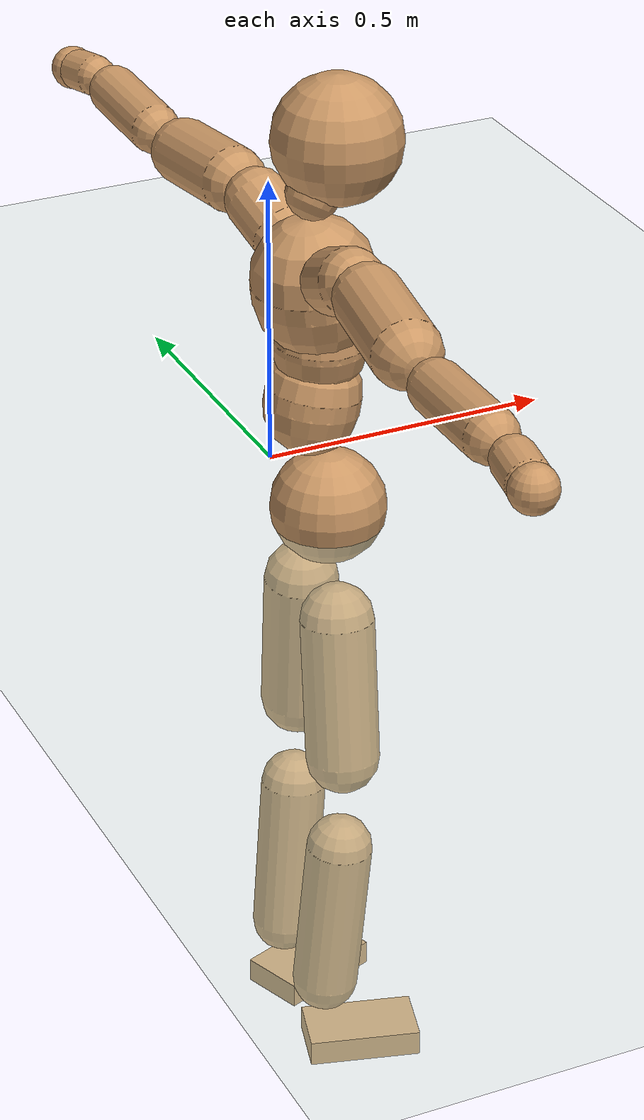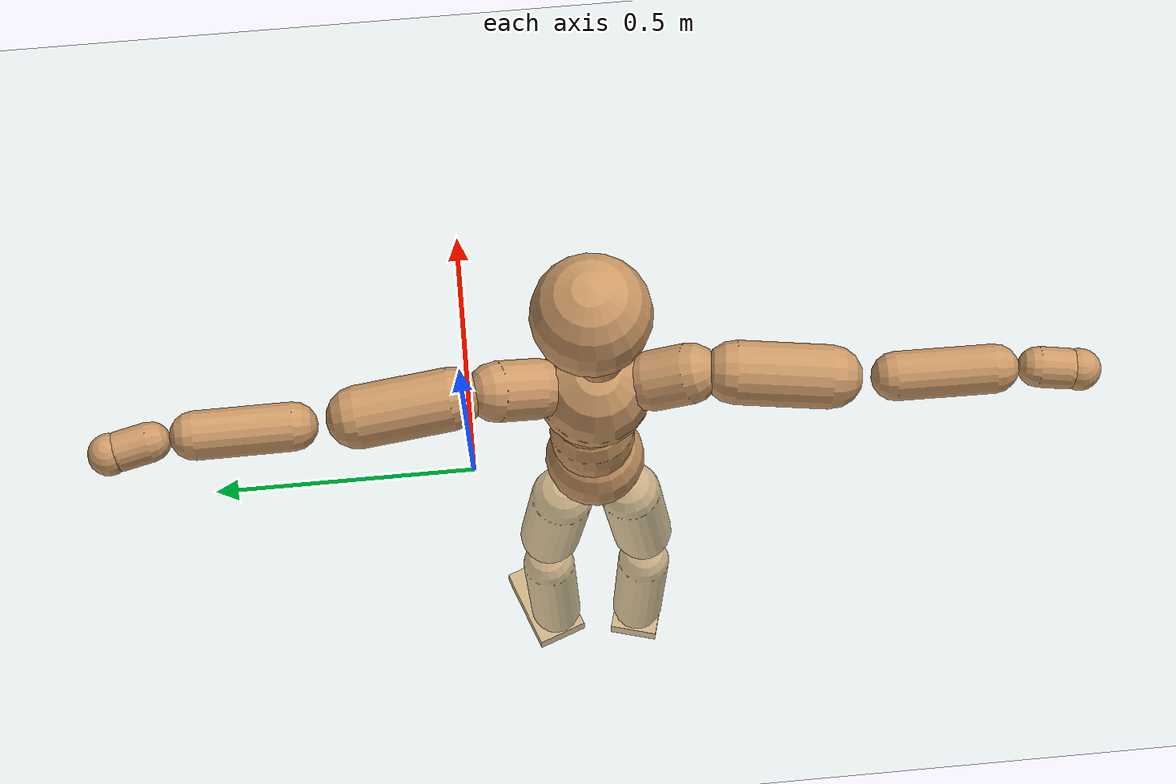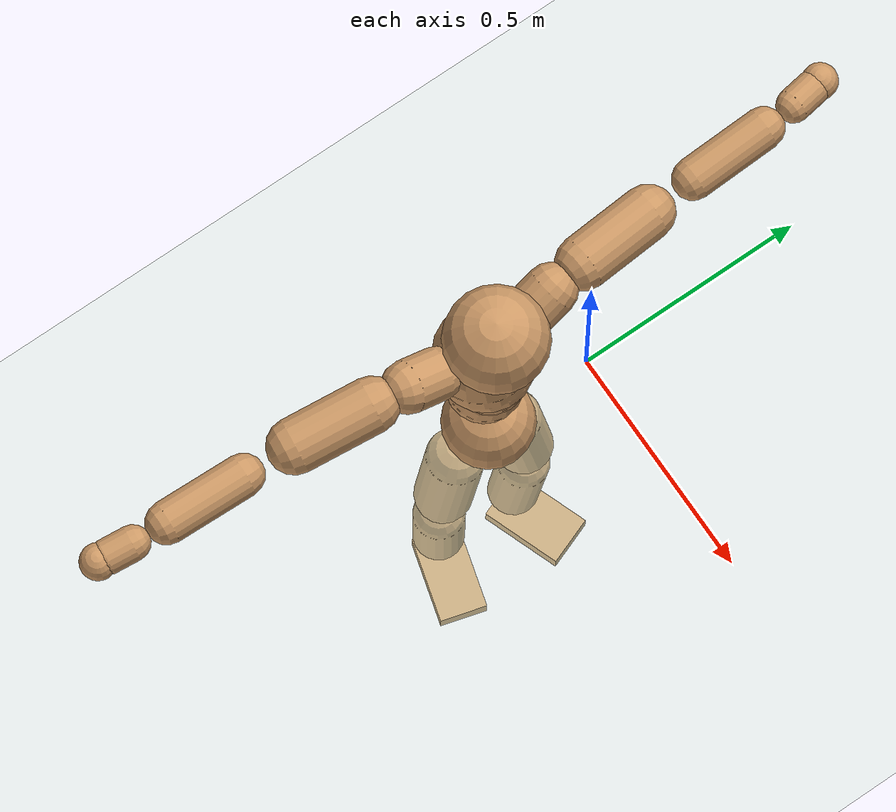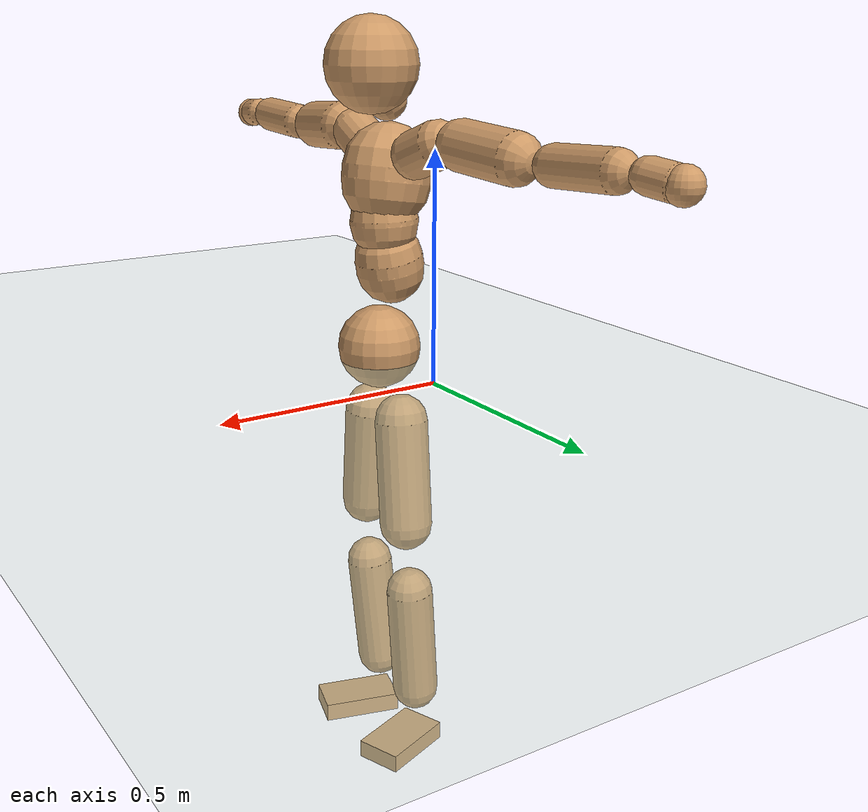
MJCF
<mujoco model="humanoid">
  <compiler coordinate="local"/>
  <default>
    <joint damping="0.0" armature="0.01" stiffness="0.0" limited="true"/>
    <geom conaffinity="1" condim="3" contype="7" margin="0.001" rgba="0.8 0.6 .4 1"/>
  </default>
  <asset>
    <texture type="skybox" builtin="gradient" rgb1=".4 .5 .6" rgb2="0 0 0" width="100" height="100"/>
    <texture builtin="flat" height="1278" mark="cross" markrgb="1 1 1" name="texgeom" random="0.01" rgb1="0.8 0.6 0.4" rgb2="0.8 0.6 0.4" type="cube" width="127"/>
    <texture builtin="checker" height="100" name="texplane" rgb1="0 0 0" rgb2="0.8 0.8 0.8" type="2d" width="100"/>
    <material name="MatPlane" reflectance="0.5" shininess="1" specular="1" texrepeat="60 60" texture="texplane"/>
    <material name="geom" texture="texgeom" texuniform="true"/>
  </asset>
  <worldbody>
    <light cutoff="100" diffuse="1 1 1" dir="-0 0 -1.3" directional="true" exponent="1" pos="0 0 1.3" specular=".1 .1 .1"/>
    <geom conaffinity="1" condim="3" name="floor" pos="0 0 0" rgba="0.8 0.9 0.8 1" size="100 100 .2" type="plane" material="MatPlane"/>
    <body name="Pelvis" pos="-0.0031 -0.2348 0.0279">
      <freejoint name="Pelvis"/>
      <geom type="sphere" contype="1" conaffinity="1" density="500" size="0.0959" pos="0.0000 0.0000 0.0000" name="Pelvis"/>
      <body name="L_Hip" pos="-0.0191 0.0576 -0.0832">
        <joint name="L_Hip_x" type="hinge" pos="0 0 0" axis="1 0 0" stiffness="800" damping="80" armature="0.02" range="-180.0000 180.0000"/>
        <joint name="L_Hip_y" type="hinge" pos="0 0 0" axis="0 1 0" stiffness="800" damping="80" armature="0.02" range="-180.0000 180.0000"/>
        <joint name="L_Hip_z" type="hinge" pos="0 0 0" axis="0 0 1" stiffness="800" damping="80" armature="0.02" range="-180.0000 180.0000"/>
        <geom type="capsule" contype="1" conaffinity="1" density="500" fromto="0.0020 0.0098 -0.0833 0.0079 0.0390 -0.3333" size="0.0622" name="L_Hip"/>
        <body name="L_Knee" pos="0.0099 0.0488 -0.4166">
          <joint name="L_Knee_x" type="hinge" pos="0 0 0" axis="1 0 0" stiffness="800" damping="80" armature="0.02" range="-180.0000 180.0000"/>
          <joint name="L_Knee_y" type="hinge" pos="0 0 0" axis="0 1 0" stiffness="800" damping="80" armature="0.02" range="-180.0000 180.0000"/>
          <joint name="L_Knee_z" type="hinge" pos="0 0 0" axis="0 0 1" stiffness="800" damping="80" armature="0.02" range="-180.0000 180.0000"/>
          <geom type="capsule" contype="1" conaffinity="1" density="500" fromto="-0.0074 -0.0030 -0.0926 -0.0297 -0.0118 -0.3706" size="0.0553" name="L_Knee"/>
          <body name="L_Ankle" pos="-0.0371 -0.0148 -0.4632">
            <joint name="L_Ankle_x" type="hinge" pos="0 0 0" axis="1 0 0" stiffness="800" damping="80" armature="0.02" range="-180.0000 180.0000"/>
            <joint name="L_Ankle_y" type="hinge" pos="0 0 0" axis="0 1 0" stiffness="800" damping="80" armature="0.02" range="-180.0000 180.0000"/>
            <joint name="L_Ankle_z" type="hinge" pos="0 0 0" axis="0 0 1" stiffness="800" damping="80" armature="0.02" range="-180.0000 180.0000"/>
            <geom type="box" contype="1" conaffinity="1" density="500" pos="0.0632 0.0235 -0.0323" size="0.0916 0.0554 0.0217" quat="0.9842 0.0000 0.0000 0.1771" name="L_Ankle"/>
            <body name="L_Toe" pos="0.1264 0.047 -0.0646">
              <joint name="L_Toe_x" type="hinge" pos="0 0 0" axis="1 0 0" stiffness="500" damping="50" armature="0.02" range="-180.0000 180.0000"/>
              <joint name="L_Toe_y" type="hinge" pos="0 0 0" axis="0 1 0" stiffness="500" damping="50" armature="0.02" range="-180.0000 180.0000"/>
              <joint name="L_Toe_z" type="hinge" pos="0 0 0" axis="0 0 1" stiffness="500" damping="50" armature="0.02" range="-180.0000 180.0000"/>
              <geom type="box" contype="1" conaffinity="1" density="500" pos="0.0000 0.0000 0.0326" size="0.0011 0.0026 0.0011" quat="0.9834 0.0000 0.0000 0.1813" name="L_Toe"/>
            </body>
          </body>
        </body>
      </body>
      <body name="R_Hip" pos="-0.0151 -0.0589 -0.0917">
        <joint name="R_Hip_x" type="hinge" pos="0 0 0" axis="1 0 0" stiffness="800" damping="80" armature="0.02" range="-180.0000 180.0000"/>
        <joint name="R_Hip_y" type="hinge" pos="0 0 0" axis="0 1 0" stiffness="800" damping="80" armature="0.02" range="-180.0000 180.0000"/>
        <joint name="R_Hip_z" type="hinge" pos="0 0 0" axis="0 0 1" stiffness="800" damping="80" armature="0.02" range="-180.0000 180.0000"/>
        <geom type="capsule" contype="1" conaffinity="1" density="500" fromto="-0.0009 -0.0097 -0.0825 -0.0038 -0.0389 -0.3301" size="0.0614" name="R_Hip"/>
        <body name="R_Knee" pos="-0.0047 -0.0486 -0.4126">
          <joint name="R_Knee_x" type="hinge" pos="0 0 0" axis="1 0 0" stiffness="800" damping="80" armature="0.02" range="-180.0000 180.0000"/>
          <joint name="R_Knee_y" type="hinge" pos="0 0 0" axis="0 1 0" stiffness="800" damping="80" armature="0.02" range="-180.0000 180.0000"/>
          <joint name="R_Knee_z" type="hinge" pos="0 0 0" axis="0 0 1" stiffness="800" damping="80" armature="0.02" range="-180.0000 180.0000"/>
          <geom type="capsule" contype="1" conaffinity="1" density="500" fromto="-0.0069 0.0039 -0.0912 -0.0276 0.0157 -0.3647" size="0.0555" name="R_Knee"/>
          <body name="R_Ankle" pos="-0.0345 0.0197 -0.4559">
            <joint name="R_Ankle_x" type="hinge" pos="0 0 0" axis="1 0 0" stiffness="800" damping="80" armature="0.02" range="-180.0000 180.0000"/>
            <joint name="R_Ankle_y" type="hinge" pos="0 0 0" axis="0 1 0" stiffness="800" damping="80" armature="0.02" range="-180.0000 180.0000"/>
            <joint name="R_Ankle_z" type="hinge" pos="0 0 0" axis="0 0 1" stiffness="800" damping="80" armature="0.02" range="-180.0000 180.0000"/>
            <geom type="box" contype="1" conaffinity="1" density="500" pos="0.0678 -0.0187 -0.0332" size="0.0949 0.0522 0.0225" quat="0.9909 0.0000 0.0000 -0.1342" name="R_Ankle"/>
            <body name="R_Toe" pos="0.1356 -0.0374 -0.0665">
              <joint name="R_Toe_x" type="hinge" pos="0 0 0" axis="1 0 0" stiffness="500" damping="50" armature="0.02" range="-180.0000 180.0000"/>
              <joint name="R_Toe_y" type="hinge" pos="0 0 0" axis="0 1 0" stiffness="500" damping="50" armature="0.02" range="-180.0000 180.0000"/>
              <joint name="R_Toe_z" type="hinge" pos="0 0 0" axis="0 0 1" stiffness="500" damping="50" armature="0.02" range="-180.0000 180.0000"/>
              <geom type="box" contype="1" conaffinity="1" density="500" pos="0.0000 0.0000 0.0332" size="0.0011 0.0025 0.0011" quat="0.9921 0.0000 0.0000 -0.1256" name="R_Toe"/>
            </body>
          </body>
        </body>
      </body>
      <body name="Torso" pos="-0.038 0.0049 0.1251">
        <joint name="Torso_x" type="hinge" pos="0 0 0" axis="1 0 0" stiffness="1000" damping="100" armature="0.02" range="-180.0000 180.0000"/>
        <joint name="Torso_y" type="hinge" pos="0 0 0" axis="0 1 0" stiffness="1000" damping="100" armature="0.02" range="-180.0000 180.0000"/>
        <joint name="Torso_z" type="hinge" pos="0 0 0" axis="0 0 1" stiffness="1000" damping="100" armature="0.02" range="-180.0000 180.0000"/>
        <geom type="capsule" contype="1" conaffinity="1" density="500" fromto="0.0158 0.0026 0.0826 0.0105 0.0017 0.0550" size="0.0781" name="Torso"/>
        <body name="Spine" pos="0.0264 0.0043 0.1376">
          <joint name="Spine_x" type="hinge" pos="0 0 0" axis="1 0 0" stiffness="1000" damping="100" armature="0.02" range="-180.0000 180.0000"/>
          <joint name="Spine_y" type="hinge" pos="0 0 0" axis="0 1 0" stiffness="1000" damping="100" armature="0.02" range="-180.0000 180.0000"/>
          <joint name="Spine_z" type="hinge" pos="0 0 0" axis="0 0 1" stiffness="1000" damping="100" armature="0.02" range="-180.0000 180.0000"/>
          <geom type="capsule" contype="1" conaffinity="1" density="500" fromto="0.0006 -0.0014 0.0336 0.0004 -0.0009 0.0224" size="0.0776" name="Spine"/>
          <body name="Chest" pos="0.0009 -0.0023 0.0559">
            <joint name="Chest_x" type="hinge" pos="0 0 0" axis="1 0 0" stiffness="1000" damping="100" armature="0.02" range="-180.0000 180.0000"/>
            <joint name="Chest_y" type="hinge" pos="0 0 0" axis="0 1 0" stiffness="1000" damping="100" armature="0.02" range="-180.0000 180.0000"/>
            <joint name="Chest_z" type="hinge" pos="0 0 0" axis="0 0 1" stiffness="1000" damping="100" armature="0.02" range="-180.0000 180.0000"/>
            <geom type="capsule" contype="1" conaffinity="1" density="500" fromto="-0.0139 -0.0048 0.0894 -0.0093 -0.0032 0.0596" size="0.1014" name="Chest"/>
            <body name="Neck" pos="-0.0274 -0.0135 0.2162">
              <joint name="Neck_x" type="hinge" pos="0 0 0" axis="1 0 0" stiffness="500" damping="50" armature="0.02" range="-180.0000 180.0000"/>
              <joint name="Neck_y" type="hinge" pos="0 0 0" axis="0 1 0" stiffness="500" damping="50" armature="0.02" range="-180.0000 180.0000"/>
              <joint name="Neck_z" type="hinge" pos="0 0 0" axis="0 0 1" stiffness="500" damping="50" armature="0.02" range="-180.0000 180.0000"/>
              <geom type="capsule" contype="1" conaffinity="1" density="500" fromto="0.0107 0.0021 0.0188 0.0429 0.0084 0.0753" size="0.0454" name="Neck"/>
              <body name="Head" pos="0.0536 0.0105 0.0941">
                <joint name="Head_x" type="hinge" pos="0 0 0" axis="1 0 0" stiffness="500" damping="50" armature="0.02" range="-180.0000 180.0000"/>
                <joint name="Head_y" type="hinge" pos="0 0 0" axis="0 1 0" stiffness="500" damping="50" armature="0.02" range="-180.0000 180.0000"/>
                <joint name="Head_z" type="hinge" pos="0 0 0" axis="0 0 1" stiffness="500" damping="50" armature="0.02" range="-180.0000 180.0000"/>
                <geom type="sphere" contype="1" conaffinity="1" density="500" size="0.1047" pos="0.0000 0.0000 0.0000" name="Head"/>
              </body>
            </body>
            <body name="L_Thorax" pos="-0.0187 0.0705 0.1164">
              <joint name="L_Thorax_x" type="hinge" pos="0 0 0" axis="1 0 0" stiffness="500" damping="50" armature="0.02" range="-180.0000 180.0000"/>
              <joint name="L_Thorax_y" type="hinge" pos="0 0 0" axis="0 1 0" stiffness="500" damping="50" armature="0.02" range="-180.0000 180.0000"/>
              <joint name="L_Thorax_z" type="hinge" pos="0 0 0" axis="0 0 1" stiffness="500" damping="50" armature="0.02" range="-180.0000 180.0000"/>
              <geom type="capsule" contype="1" conaffinity="1" density="500" fromto="-0.0034 0.0240 0.0094 -0.0138 0.0960 0.0374" size="0.0533" name="L_Thorax"/>
              <body name="L_Shoulder" pos="-0.0172 0.12 0.0468">
                <joint name="L_Shoulder_x" type="hinge" pos="0 0 0" axis="1 0 0" stiffness="500" damping="50" armature="0.02" range="-720.0000 720.0000"/>
                <joint name="L_Shoulder_y" type="hinge" pos="0 0 0" axis="0 1 0" stiffness="500" damping="50" armature="0.02" range="-720.0000 720.0000"/>
                <joint name="L_Shoulder_z" type="hinge" pos="0 0 0" axis="0 0 1" stiffness="500" damping="50" armature="0.02" range="-720.0000 720.0000"/>
                <geom type="capsule" contype="1" conaffinity="1" density="500" fromto="-0.0049 0.0543 -0.0038 -0.0195 0.2173 -0.0151" size="0.0552" name="L_Shoulder"/>
                <body name="L_Elbow" pos="-0.0243 0.2716 -0.0189">
                  <joint name="L_Elbow_x" type="hinge" pos="0 0 0" axis="1 0 0" stiffness="500" damping="50" armature="0.02" range="-720.0000 720.0000"/>
                  <joint name="L_Elbow_y" type="hinge" pos="0 0 0" axis="0 1 0" stiffness="500" damping="50" armature="0.02" range="-720.0000 720.0000"/>
                  <joint name="L_Elbow_z" type="hinge" pos="0 0 0" axis="0 0 1" stiffness="500" damping="50" armature="0.02" range="-720.0000 720.0000"/>
                  <geom type="capsule" contype="1" conaffinity="1" density="500" fromto="-0.0016 0.0562 0.0028 -0.0063 0.2249 0.0111" size="0.0426" name="L_Elbow"/>
                  <body name="L_Wrist" pos="-0.0078 0.2812 0.0138">
                    <joint name="L_Wrist_x" type="hinge" pos="0 0 0" axis="1 0 0" stiffness="300" damping="30" armature="0.02" range="-180.0000 180.0000"/>
                    <joint name="L_Wrist_y" type="hinge" pos="0 0 0" axis="0 1 0" stiffness="300" damping="30" armature="0.02" range="-180.0000 180.0000"/>
                    <joint name="L_Wrist_z" type="hinge" pos="0 0 0" axis="0 0 1" stiffness="300" damping="30" armature="0.02" range="-180.0000 180.0000"/>
                    <geom type="capsule" contype="1" conaffinity="1" density="500" fromto="-0.0033 0.0180 -0.0022 -0.0132 0.0721 -0.0088" size="0.0351" name="L_Wrist"/>
                    <body name="L_Hand" pos="-0.0165 0.0902 -0.011">
                      <joint name="L_Hand_x" type="hinge" pos="0 0 0" axis="1 0 0" stiffness="300" damping="30" armature="0.02" range="-180.0000 180.0000"/>
                      <joint name="L_Hand_y" type="hinge" pos="0 0 0" axis="0 1 0" stiffness="300" damping="30" armature="0.02" range="-180.0000 180.0000"/>
                      <joint name="L_Hand_z" type="hinge" pos="0 0 0" axis="0 0 1" stiffness="300" damping="30" armature="0.02" range="-180.0000 180.0000"/>
                      <geom type="sphere" contype="1" conaffinity="1" density="500" size="0.0369" pos="0.0000 0.0000 0.0000" name="L_Hand"/>
                    </body>
                  </body>
                </body>
              </body>
            </body>
            <body name="R_Thorax" pos="-0.0233 -0.081 0.1146">
              <joint name="R_Thorax_x" type="hinge" pos="0 0 0" axis="1 0 0" stiffness="500" damping="50" armature="0.02" range="-180.0000 180.0000"/>
              <joint name="R_Thorax_y" type="hinge" pos="0 0 0" axis="0 1 0" stiffness="500" damping="50" armature="0.02" range="-180.0000 180.0000"/>
              <joint name="R_Thorax_z" type="hinge" pos="0 0 0" axis="0 0 1" stiffness="500" damping="50" armature="0.02" range="-180.0000 180.0000"/>
              <geom type="capsule" contype="1" conaffinity="1" density="500" fromto="-0.0013 -0.0221 0.0097 -0.0054 -0.0883 0.0388" size="0.0534" name="R_Thorax"/>
              <body name="R_Shoulder" pos="-0.0067 -0.1104 0.0485">
                <joint name="R_Shoulder_x" type="hinge" pos="0 0 0" axis="1 0 0" stiffness="500" damping="50" armature="0.02" range="-720.0000 720.0000"/>
                <joint name="R_Shoulder_y" type="hinge" pos="0 0 0" axis="0 1 0" stiffness="500" damping="50" armature="0.02" range="-720.0000 720.0000"/>
                <joint name="R_Shoulder_z" type="hinge" pos="0 0 0" axis="0 0 1" stiffness="500" damping="50" armature="0.02" range="-720.0000 720.0000"/>
                <geom type="capsule" contype="1" conaffinity="1" density="500" fromto="-0.0064 -0.0549 -0.0038 -0.0255 -0.2198 -0.0153" size="0.056" name="R_Shoulder"/>
                <body name="R_Elbow" pos="-0.0319 -0.2747 -0.0192">
                  <joint name="R_Elbow_x" type="hinge" pos="0 0 0" axis="1 0 0" stiffness="500" damping="50" armature="0.02" range="-720.0000 720.0000"/>
                  <joint name="R_Elbow_y" type="hinge" pos="0 0 0" axis="0 1 0" stiffness="500" damping="50" armature="0.02" range="-720.0000 720.0000"/>
                  <joint name="R_Elbow_z" type="hinge" pos="0 0 0" axis="0 0 1" stiffness="500" damping="50" armature="0.02" range="-720.0000 720.0000"/>
                  <geom type="capsule" contype="1" conaffinity="1" density="500" fromto="-0.0014 -0.0571 0.0018 -0.0054 -0.2282 0.0073" size="0.043" name="R_Elbow"/>
                  <body name="R_Wrist" pos="-0.0068 -0.2853 0.0091">
                    <joint name="R_Wrist_x" type="hinge" pos="0 0 0" axis="1 0 0" stiffness="300" damping="30" armature="0.02" range="-180.0000 180.0000"/>
                    <joint name="R_Wrist_y" type="hinge" pos="0 0 0" axis="0 1 0" stiffness="300" damping="30" armature="0.02" range="-180.0000 180.0000"/>
                    <joint name="R_Wrist_z" type="hinge" pos="0 0 0" axis="0 0 1" stiffness="300" damping="30" armature="0.02" range="-180.0000 180.0000"/>
                    <geom type="capsule" contype="1" conaffinity="1" density="500" fromto="-0.0021 -0.0183 -0.0018 -0.0085 -0.0732 -0.0071" size="0.0355" name="R_Wrist"/>
                    <body name="R_Hand" pos="-0.0107 -0.0915 -0.0089">
                      <joint name="R_Hand_x" type="hinge" pos="0 0 0" axis="1 0 0" stiffness="300" damping="30" armature="0.02" range="-180.0000 180.0000"/>
                      <joint name="R_Hand_y" type="hinge" pos="0 0 0" axis="0 1 0" stiffness="300" damping="30" armature="0.02" range="-180.0000 180.0000"/>
                      <joint name="R_Hand_z" type="hinge" pos="0 0 0" axis="0 0 1" stiffness="300" damping="30" armature="0.02" range="-180.0000 180.0000"/>
                      <geom type="sphere" contype="1" conaffinity="1" density="500" size="0.0371" pos="0.0000 0.0000 0.0000" name="R_Hand"/>
                    </body>
                  </body>
                </body>
              </body>
            </body>
          </body>
        </body>
      </body>
    </body>
  </worldbody>
  <actuator>
    <motor name="L_Hip_x" joint="L_Hip_x" gear="500"/>
    <motor name="L_Hip_y" joint="L_Hip_y" gear="500"/>
    <motor name="L_Hip_z" joint="L_Hip_z" gear="500"/>
    <motor name="L_Knee_x" joint="L_Knee_x" gear="500"/>
    <motor name="L_Knee_y" joint="L_Knee_y" gear="500"/>
    <motor name="L_Knee_z" joint="L_Knee_z" gear="500"/>
    <motor name="L_Ankle_x" joint="L_Ankle_x" gear="500"/>
    <motor name="L_Ankle_y" joint="L_Ankle_y" gear="500"/>
    <motor name="L_Ankle_z" joint="L_Ankle_z" gear="500"/>
    <motor name="L_Toe_x" joint="L_Toe_x" gear="500"/>
    <motor name="L_Toe_y" joint="L_Toe_y" gear="500"/>
    <motor name="L_Toe_z" joint="L_Toe_z" gear="500"/>
    <motor name="R_Hip_x" joint="R_Hip_x" gear="500"/>
    <motor name="R_Hip_y" joint="R_Hip_y" gear="500"/>
    <motor name="R_Hip_z" joint="R_Hip_z" gear="500"/>
    <motor name="R_Knee_x" joint="R_Knee_x" gear="500"/>
    <motor name="R_Knee_y" joint="R_Knee_y" gear="500"/>
    <motor name="R_Knee_z" joint="R_Knee_z" gear="500"/>
    <motor name="R_Ankle_x" joint="R_Ankle_x" gear="500"/>
    <motor name="R_Ankle_y" joint="R_Ankle_y" gear="500"/>
    <motor name="R_Ankle_z" joint="R_Ankle_z" gear="500"/>
    <motor name="R_Toe_x" joint="R_Toe_x" gear="500"/>
    <motor name="R_Toe_y" joint="R_Toe_y" gear="500"/>
    <motor name="R_Toe_z" joint="R_Toe_z" gear="500"/>
    <motor name="Torso_x" joint="Torso_x" gear="500"/>
    <motor name="Torso_y" joint="Torso_y" gear="500"/>
    <motor name="Torso_z" joint="Torso_z" gear="500"/>
    <motor name="Spine_x" joint="Spine_x" gear="500"/>
    <motor name="Spine_y" joint="Spine_y" gear="500"/>
    <motor name="Spine_z" joint="Spine_z" gear="500"/>
    <motor name="Chest_x" joint="Chest_x" gear="500"/>
    <motor name="Chest_y" joint="Chest_y" gear="500"/>
    <motor name="Chest_z" joint="Chest_z" gear="500"/>
    <motor name="Neck_x" joint="Neck_x" gear="500"/>
    <motor name="Neck_y" joint="Neck_y" gear="500"/>
    <motor name="Neck_z" joint="Neck_z" gear="500"/>
    <motor name="Head_x" joint="Head_x" gear="500"/>
    <motor name="Head_y" joint="Head_y" gear="500"/>
    <motor name="Head_z" joint="Head_z" gear="500"/>
    <motor name="L_Thorax_x" joint="L_Thorax_x" gear="500"/>
    <motor name="L_Thorax_y" joint="L_Thorax_y" gear="500"/>
    <motor name="L_Thorax_z" joint="L_Thorax_z" gear="500"/>
    <motor name="L_Shoulder_x" joint="L_Shoulder_x" gear="500"/>
    <motor name="L_Shoulder_y" joint="L_Shoulder_y" gear="500"/>
    <motor name="L_Shoulder_z" joint="L_Shoulder_z" gear="500"/>
    <motor name="L_Elbow_x" joint="L_Elbow_x" gear="500"/>
    <motor name="L_Elbow_y" joint="L_Elbow_y" gear="500"/>
    <motor name="L_Elbow_z" joint="L_Elbow_z" gear="500"/>
    <motor name="L_Wrist_x" joint="L_Wrist_x" gear="500"/>
    <motor name="L_Wrist_y" joint="L_Wrist_y" gear="500"/>
    <motor name="L_Wrist_z" joint="L_Wrist_z" gear="500"/>
    <motor name="L_Hand_x" joint="L_Hand_x" gear="500"/>
    <motor name="L_Hand_y" joint="L_Hand_y" gear="500"/>
    <motor name="L_Hand_z" joint="L_Hand_z" gear="500"/>
    <motor name="R_Thorax_x" joint="R_Thorax_x" gear="500"/>
    <motor name="R_Thorax_y" joint="R_Thorax_y" gear="500"/>
    <motor name="R_Thorax_z" joint="R_Thorax_z" gear="500"/>
    <motor name="R_Shoulder_x" joint="R_Shoulder_x" gear="500"/>
    <motor name="R_Shoulder_y" joint="R_Shoulder_y" gear="500"/>
    <motor name="R_Shoulder_z" joint="R_Shoulder_z" gear="500"/>
    <motor name="R_Elbow_x" joint="R_Elbow_x" gear="500"/>
    <motor name="R_Elbow_y" joint="R_Elbow_y" gear="500"/>
    <motor name="R_Elbow_z" joint="R_Elbow_z" gear="500"/>
    <motor name="R_Wrist_x" joint="R_Wrist_x" gear="500"/>
    <motor name="R_Wrist_y" joint="R_Wrist_y" gear="500"/>
    <motor name="R_Wrist_z" joint="R_Wrist_z" gear="500"/>
    <motor name="R_Hand_x" joint="R_Hand_x" gear="500"/>
    <motor name="R_Hand_y" joint="R_Hand_y" gear="500"/>
    <motor name="R_Hand_z" joint="R_Hand_z" gear="500"/>
  </actuator>
  <contact>
    <exclude body1="Torso" body2="Chest"/>
    <exclude body1="Head" body2="Chest"/>
    <exclude body1="R_Knee" body2="R_Toe"/>
    <exclude body1="R_Knee" body2="L_Ankle"/>
    <exclude body1="R_Knee" body2="L_Toe"/>
    <exclude body1="L_Knee" body2="L_Toe"/>
    <exclude body1="L_Knee" body2="R_Ankle"/>
    <exclude body1="L_Knee" body2="R_Toe"/>
    <exclude body1="L_Shoulder" body2="Chest"/>
    <exclude body1="R_Shoulder" body2="Chest"/>
  </contact>
  <sensor/>
  <size njmax="700" nconmax="700"/>
</mujoco>
